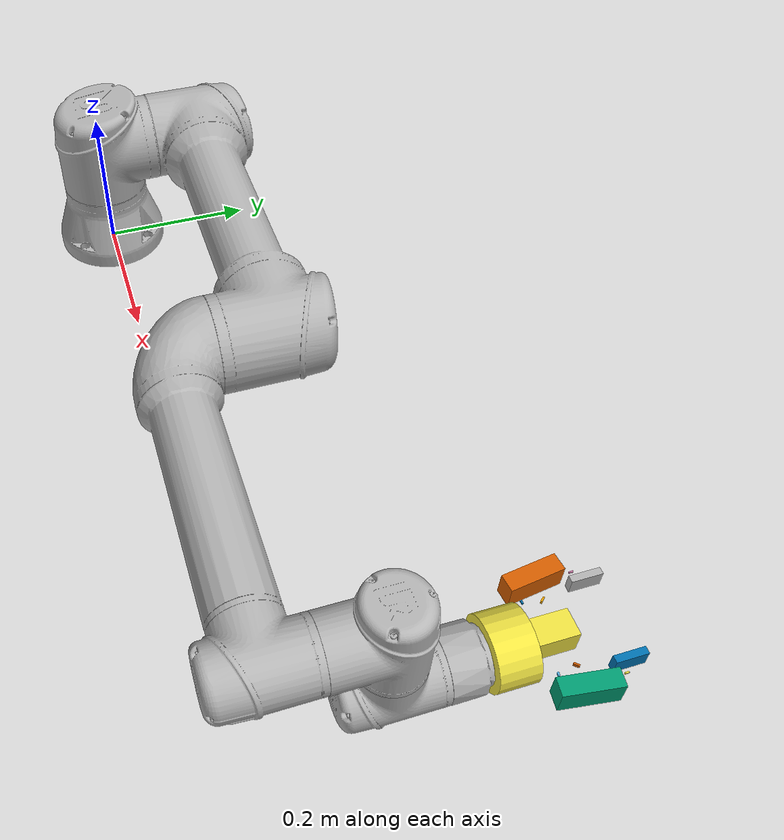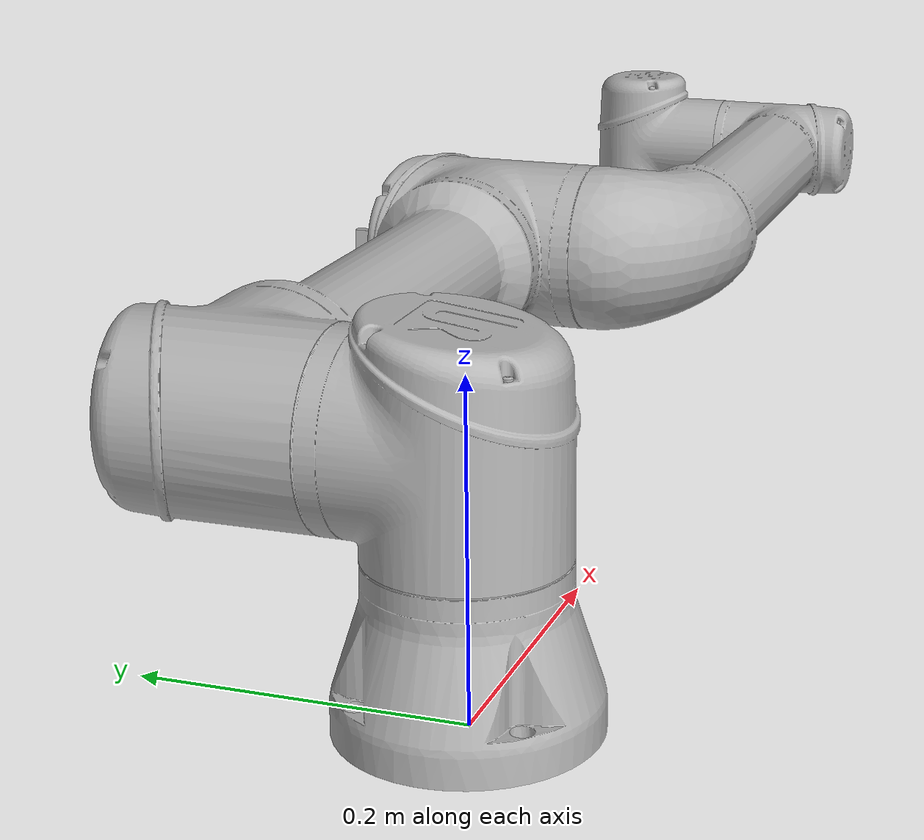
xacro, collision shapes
<?xml version="1.0"?>
<robot xmlns:xacro="http://ros.org/wiki/xacro"
       name="ur5e" >

  <!-- common stuff -->
  <xacro:include filename="$(find ur_e_description)/urdf/common.gazebo.xacro" />
nnn
  <!-- ur5e -->
  <xacro:include filename="$(find ur_e_description)/urdf/ur5e.urdf.xacro" />

  <!-- robotiq coupler -->
  <xacro:include filename="$(find robotiq_2f_model)/model/robotiq_ur_coupler.urdf.xacro" />

  <!-- robotiq_85_model -->
  <xacro:include filename="$(find robotiq_2f_model)/model/robotiq_2f_85.urdf.xacro" />
  <!-- arm -->
  <xacro:ur5e_robot prefix="" joint_limited="true"
    shoulder_pan_lower_limit="${-pi}" shoulder_pan_upper_limit="${pi}"
    shoulder_lift_lower_limit="${-pi}" shoulder_lift_upper_limit="${pi}"
    elbow_joint_lower_limit="${-pi}" elbow_joint_upper_limit="${pi}"
    wrist_1_lower_limit="${-pi}" wrist_1_upper_limit="${pi}"
    wrist_2_lower_limit="${-pi}" wrist_2_upper_limit="${pi}"
    wrist_3_lower_limit="${-pi}" wrist_3_upper_limit="${pi}"
    />

  <xacro:robotiq_ur_coupler parent="tool0" name="tool1" />
  <xacro:robotiq_2f_85 name="simple_gripper" parent="tool1" precise_collision="false" adaptive_transmission="false">
    <origin xyz="0 0 0" rpy="0 0 -${pi/2}" />
  </xacro:robotiq_2f_85>

  <link name="world" />

  <joint name="world_joint" type="fixed">
    <parent link="world" />
    <child link = "base_link" />
    <origin xyz="0.0 0.0 0.0" rpy="0.0 0.0 0.0" />
  </joint>

  <gazebo>
    <plugin name="gazebo_ros_control" filename="libgazebo_ros_control.so">
    </plugin>
    <plugin name="gazebo_mimic_joint" filename="libroboticsgroup_gazebo_mimic_joint_plugin.so">
    </plugin>
  </gazebo>

</robot>

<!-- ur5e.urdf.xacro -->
<robot xmlns:xacro="http://ros.org/wiki/xacro">

  <xacro:include filename="$(find ur_e_description)/urdf/ur.transmission.xacro" />
  <xacro:include filename="$(find ur_e_description)/urdf/ur.gazebo.xacro" />

  <xacro:macro name="cylinder_inertial" params="radius length mass *origin">
    <inertial>
      <mass value="${mass}" />
      <xacro:insert_block name="origin" />
      <inertia ixx="${0.0833333 * mass * (3 * radius * radius + length * length)}" ixy="0.0" ixz="0.0"
        iyy="${0.0833333 * mass * (3 * radius * radius + length * length)}" iyz="0.0"
        izz="${0.5 * mass * radius * radius}" />
    </inertial>
  </xacro:macro>

  <xacro:macro name="ur5e_robot" params="prefix joint_limited
    shoulder_pan_lower_limit:=${-pi}    shoulder_pan_upper_limit:=${pi}
    shoulder_lift_lower_limit:=${-pi}    shoulder_lift_upper_limit:=${pi}
    elbow_joint_lower_limit:=${-pi}    elbow_joint_upper_limit:=${pi}
    wrist_1_lower_limit:=${-pi}    wrist_1_upper_limit:=${pi}
    wrist_2_lower_limit:=${-pi}    wrist_2_upper_limit:=${pi}
    wrist_3_lower_limit:=${-pi}    wrist_3_upper_limit:=${pi}
    transmission_hw_interface:=hardware_interface/PositionJointInterface
    safety_limits:=false safety_pos_margin:=0.15
    safety_k_position:=20">

    <!-- Inertia parameters -->
    <xacro:property name="base_mass" value="4.0" />  <!-- This mass might be incorrect -->
    <xacro:property name="shoulder_mass" value="3.7000" />
    <xacro:property name="upper_arm_mass" value="8.3930" />
    <xacro:property name="forearm_mass" value="2.2750" />
    <xacro:property name="wrist_1_mass" value="1.2190" />
    <xacro:property name="wrist_2_mass" value="1.2190" />
    <xacro:property name="wrist_3_mass" value="0.1879" />

    <xacro:property name="shoulder_cog" value="0.0 0.00193 -0.02561" />
    <xacro:property name="upper_arm_cog" value="0.0 -0.024201 0.2125" />
    <xacro:property name="forearm_cog" value="0.0 0.0265 0.11993" />
    <xacro:property name="wrist_1_cog" value="0.0 0.110949 0.01634" />
    <xacro:property name="wrist_2_cog" value="0.0 0.0018 0.11099" />
    <xacro:property name="wrist_3_cog" value="0.0 0.001159 0.0" />

    <!-- Kinematic model -->
    <!-- Properties from urcontrol.conf -->
    <xacro:property name="d1" value="0.163" />
    <xacro:property name="a2" value="-0.425" />
    <xacro:property name="a3" value="-0.392" />
    <xacro:property name="d4" value="0.127" />
    <xacro:property name="d5" value="0.100" />
    <xacro:property name="d6" value="0.100" />

    <!-- Arbitrary offsets for shoulder/elbow joints -->
    <xacro:property name="shoulder_offset" value="0.138" />
    <xacro:property name="elbow_offset" value="-0.131" />

    <!-- link lengths used in model -->
    <xacro:property name="shoulder_height" value="${d1}" />
    <xacro:property name="upper_arm_length" value="${-a2}" />
    <xacro:property name="forearm_length" value="${-a3}" />
    <xacro:property name="wrist_1_length" value="${d4}" />
    <xacro:property name="wrist_2_length" value="${d5}" />
    <xacro:property name="wrist_3_length" value="${d6}" />
    <!--property name="shoulder_height" value="0.089159" /-->
    <!--property name="shoulder_offset" value="0.13585" /-->  <!-- shoulder_offset - elbow_offset + wrist_1_length = 0.10915 -->
    <!--property name="upper_arm_length" value="0.42500" /-->
    <!--property name="elbow_offset" value="0.1197" /-->       <!-- CAD measured -->
    <!--property name="forearm_length" value="0.39225" /-->
    <!--property name="wrist_1_length" value="0.093" /-->     <!-- CAD measured -->
    <!--property name="wrist_2_length" value="0.09465" /-->   <!-- In CAD this distance is 0.930, but in the spec it is 0.09465 -->
    <!--property name="wrist_3_length" value="0.0823" /-->

    <xacro:property name="shoulder_radius" value="0.060" />   <!-- manually measured -->
    <xacro:property name="upper_arm_radius" value="0.054" />  <!-- manually measured -->
    <xacro:property name="elbow_radius" value="0.060" />      <!-- manually measured -->
    <xacro:property name="forearm_radius" value="0.040" />    <!-- manually measured -->
    <xacro:property name="wrist_radius" value="0.045" />      <!-- manually measured -->

    <link name="${prefix}base_link" >
      <visual>
        <geometry>
          <mesh filename="package://ur_e_description/meshes/ur5e/visual/base.dae" />
        </geometry>
        <material name="LightGrey">
          <color rgba="0.7 0.7 0.7 1.0"/>
        </material>
      </visual>
      <collision>
        <geometry>
          <mesh filename="package://ur_e_description/meshes/ur5e/collision/base.stl" />
        </geometry>
      </collision>
      <xacro:cylinder_inertial radius="0.06" length="0.05" mass="${base_mass}">
        <origin xyz="0.0 0.0 0.0" rpy="0 0 0" />
      </xacro:cylinder_inertial>
    </link>

    <joint name="${prefix}shoulder_pan_joint" type="revolute">
      <parent link="${prefix}base_link" />
      <child link = "${prefix}shoulder_link" />
      <origin xyz="0.0 0.0 ${shoulder_height}" rpy="0.0 0.0 0.0" />
      <axis xyz="0 0 1" />
      <xacro:unless value="${joint_limited}">
        <limit lower="${-2.0 * pi}" upper="${2.0 * pi}" effort="150.0" velocity="3.14"/>
        <xacro:if value="${safety_limits}">
          <safety_controller soft_lower_limit="${-2.0 * pi + safety_pos_margin}" soft_upper_limit="${2.0 * pi - safety_pos_margin}" k_position="${safety_k_position}" k_velocity="0.0"/>
        </xacro:if>
      </xacro:unless>
      <xacro:if value="${joint_limited}">
        <limit lower="${shoulder_pan_lower_limit}" upper="${shoulder_pan_upper_limit}" effort="150.0" velocity="3.14"/>
        <xacro:if value="${safety_limits}">
          <safety_controller soft_lower_limit="${shoulder_pan_lower_limit + safety_pos_margin}" soft_upper_limit="${shoulder_pan_upper_limit - safety_pos_margin}" k_position="${safety_k_position}" k_velocity="0.0"/>
        </xacro:if>
      </xacro:if>
      <dynamics damping="0.0" friction="0.0"/>
    </joint>

    <link name="${prefix}shoulder_link">
      <visual>
        <geometry>
          <mesh filename="package://ur_e_description/meshes/ur5e/visual/shoulder.dae" />
        </geometry>
        <material name="LightGrey">
          <color rgba="0.7 0.7 0.7 1.0"/>
        </material>
      </visual>
      <collision>
        <geometry>
          <mesh filename="package://ur_e_description/meshes/ur5e/collision/shoulder.stl" />
        </geometry>
      </collision>
      <xacro:cylinder_inertial radius="0.06" length="0.15" mass="${shoulder_mass}">
        <origin xyz="0.0 0.0 0.0" rpy="0 0 0" />
      </xacro:cylinder_inertial>
    </link>

    <joint name="${prefix}shoulder_lift_joint" type="revolute">
      <parent link="${prefix}shoulder_link" />
      <child link = "${prefix}upper_arm_link" />
      <origin xyz="0.0 ${shoulder_offset} 0.0" rpy="0.0 ${pi / 2.0} 0.0" />
      <axis xyz="0 1 0" />
      <xacro:unless value="${joint_limited}">
        <limit lower="${-2.0 * pi}" upper="${2.0 * pi}" effort="150.0" velocity="3.14"/>
        <xacro:if value="${safety_limits}">
          <safety_controller soft_lower_limit="${-2.0 * pi + safety_pos_margin}" soft_upper_limit="${2.0 * pi - safety_pos_margin}" k_position="${safety_k_position}" k_velocity="0.0"/>
        </xacro:if>
      </xacro:unless>
      <xacro:if value="${joint_limited}">
        <limit lower="${shoulder_lift_lower_limit}" upper="${shoulder_lift_upper_limit}" effort="150.0" velocity="3.14"/>
        <xacro:if value="${safety_limits}">
          <safety_controller soft_lower_limit="${shoulder_lift_lower_limit + safety_pos_margin}" soft_upper_limit="${shoulder_lift_upper_limit - safety_pos_margin}" k_position="${safety_k_position}" k_velocity="0.0"/>
        </xacro:if>
      </xacro:if>
      <dynamics damping="0.0" friction="0.0"/>
    </joint>

    <link name="${prefix}upper_arm_link">
      <visual>
        <geometry>
          <mesh filename="package://ur_e_description/meshes/ur5e/visual/upperarm.dae" />
        </geometry>
        <material name="LightGrey">
          <color rgba="0.7 0.7 0.7 1.0"/>
        </material>
      </visual>
      <collision>
        <geometry>
          <mesh filename="package://ur_e_description/meshes/ur5e/collision/upperarm.stl" />
        </geometry>
      </collision>
      <xacro:cylinder_inertial radius="0.06" length="${upper_arm_length}" mass="${upper_arm_mass}">
        <origin xyz="0.0 0.0 ${upper_arm_length/2}" rpy="0 0 0" />
      </xacro:cylinder_inertial>
    </link>

    <joint name="${prefix}elbow_joint" type="revolute">
      <parent link="${prefix}upper_arm_link" />
      <child link = "${prefix}forearm_link" />
      <origin xyz="0.0 ${elbow_offset} ${upper_arm_length}" rpy="0.0 0.0 0.0" />
      <axis xyz="0 1 0" />
      <xacro:unless value="${joint_limited}">
        <limit lower="${-pi}" upper="${pi}" effort="150.0" velocity="3.14"/>
        <xacro:if value="${safety_limits}">
          <safety_controller soft_lower_limit="${-2.0 * pi + safety_pos_margin}" soft_upper_limit="${2.0 * pi - safety_pos_margin}" k_position="${safety_k_position}" k_velocity="0.0"/>
        </xacro:if>
      </xacro:unless>
      <xacro:if value="${joint_limited}">
        <limit lower="${elbow_joint_lower_limit}" upper="${elbow_joint_upper_limit}" effort="150.0" velocity="3.14"/>
        <xacro:if value="${safety_limits}">
          <safety_controller soft_lower_limit="${elbow_joint_lower_limit + safety_pos_margin}" soft_upper_limit="${elbow_joint_upper_limit - safety_pos_margin}" k_position="${safety_k_position}" k_velocity="0.0"/>
        </xacro:if>
      </xacro:if>
      <dynamics damping="0.0" friction="0.0"/>
    </joint>

    <link name="${prefix}forearm_link">
      <visual>
        <geometry>
          <mesh filename="package://ur_e_description/meshes/ur5e/visual/forearm.dae" />
        </geometry>
        <material name="LightGrey">
          <color rgba="0.7 0.7 0.7 1.0"/>
        </material>
      </visual>
      <collision>
        <geometry>
          <mesh filename="package://ur_e_description/meshes/ur5e/collision/forearm.stl" />
        </geometry>
      </collision>
      <xacro:cylinder_inertial radius="0.06" length="${forearm_length}" mass="${forearm_mass}">
        <origin xyz="0.0 0.0 ${forearm_length/2}" rpy="0 0 0" />
      </xacro:cylinder_inertial>
    </link>

    <joint name="${prefix}wrist_1_joint" type="revolute">
      <parent link="${prefix}forearm_link" />
      <child link = "${prefix}wrist_1_link" />
      <origin xyz="0.0 0.0 ${forearm_length}" rpy="0.0 ${pi / 2.0} 0.0" />
      <axis xyz="0 1 0" />
      <xacro:unless value="${joint_limited}">
        <limit lower="${-2.0 * pi}" upper="${2.0 * pi}" effort="28.0" velocity="6.28"/>
        <xacro:if value="${safety_limits}">
          <safety_controller soft_lower_limit="${-2.0 * pi + safety_pos_margin}" soft_upper_limit="${2.0 * pi - safety_pos_margin}" k_position="${safety_k_position}" k_velocity="0.0"/>
        </xacro:if>
      </xacro:unless>
      <xacro:if value="${joint_limited}">
        <limit lower="${wrist_1_lower_limit}" upper="${wrist_1_upper_limit}" effort="28.0" velocity="6.28"/>
        <xacro:if value="${safety_limits}">
          <safety_controller soft_lower_limit="${wrist_1_lower_limit + safety_pos_margin}" soft_upper_limit="${wrist_1_upper_limit - safety_pos_margin}" k_position="${safety_k_position}" k_velocity="0.0"/>
        </xacro:if>
      </xacro:if>
      <dynamics damping="0.0" friction="0.0"/>
    </joint>

    <link name="${prefix}wrist_1_link">
      <visual>
        <geometry>
          <mesh filename="package://ur_e_description/meshes/ur5e/visual/wrist1.dae" />
        </geometry>
        <material name="LightGrey">
          <color rgba="0.7 0.7 0.7 1.0"/>
        </material>
      </visual>
      <collision>
        <geometry>
          <mesh filename="package://ur_e_description/meshes/ur5e/collision/wrist1.stl" />
        </geometry>
      </collision>
      <xacro:cylinder_inertial radius="0.06" length="0.12" mass="${wrist_1_mass}">
        <origin xyz="0.0 ${wrist_1_length} 0.0" rpy="0 0 0" />
      </xacro:cylinder_inertial>
    </link>

    <joint name="${prefix}wrist_2_joint" type="revolute">
      <parent link="${prefix}wrist_1_link" />
      <child link = "${prefix}wrist_2_link" />
      <origin xyz="0.0 ${wrist_1_length} 0.0" rpy="0.0 0.0 0.0" />
      <axis xyz="0 0 1" />
      <xacro:unless value="${joint_limited}">
        <limit lower="${-2.0 * pi}" upper="${2.0 * pi}" effort="28.0" velocity="6.28"/>
        <xacro:if value="${safety_limits}">
          <safety_controller soft_lower_limit="${-2.0 * pi + safety_pos_margin}" soft_upper_limit="${2.0 * pi - safety_pos_margin}" k_position="${safety_k_position}" k_velocity="0.0"/>
        </xacro:if>
      </xacro:unless>
      <xacro:if value="${joint_limited}">
        <limit lower="${wrist_2_lower_limit}" upper="${wrist_2_upper_limit}" effort="28.0" velocity="6.28"/>
        <xacro:if value="${safety_limits}">
          <safety_controller soft_lower_limit="${wrist_2_lower_limit + safety_pos_margin}" soft_upper_limit="${wrist_2_upper_limit - safety_pos_margin}" k_position="${safety_k_position}" k_velocity="0.0"/>
        </xacro:if>
      </xacro:if>
      <dynamics damping="0.0" friction="0.0"/>
    </joint>

    <link name="${prefix}wrist_2_link">
      <visual>
        <geometry>
          <mesh filename="package://ur_e_description/meshes/ur5e/visual/wrist2.dae" />
        </geometry>
        <material name="LightGrey">
          <color rgba="0.7 0.7 0.7 1.0"/>
        </material>
      </visual>
      <collision>
        <geometry>
          <mesh filename="package://ur_e_description/meshes/ur5e/collision/wrist2.stl" />
        </geometry>
      </collision>
      <xacro:cylinder_inertial radius="0.06" length="0.12" mass="${wrist_2_mass}">
        <origin xyz="0.0 0.0 ${wrist_2_length}" rpy="0 0 0" />
      </xacro:cylinder_inertial>
    </link>

    <joint name="${prefix}wrist_3_joint" type="revolute">
      <parent link="${prefix}wrist_2_link" />
      <child link = "${prefix}wrist_3_link" />
      <origin xyz="0.0 0.0 ${wrist_2_length}" rpy="0.0 0.0 0.0" />
      <axis xyz="0 1 0" />
      <xacro:unless value="${joint_limited}">
        <limit lower="${-2.0 * pi}" upper="${2.0 * pi}" effort="28.0" velocity="6.28"/>
        <xacro:if value="${safety_limits}">
          <safety_controller soft_lower_limit="${-2.0 * pi + safety_pos_margin}" soft_upper_limit="${2.0 * pi - safety_pos_margin}" k_position="${safety_k_position}" k_velocity="0.0"/>
        </xacro:if>
      </xacro:unless>
      <xacro:if value="${joint_limited}">
        <limit lower="${wrist_3_lower_limit}" upper="${wrist_3_upper_limit}" effort="28.0" velocity="6.28"/>
        <xacro:if value="${safety_limits}">
          <safety_controller soft_lower_limit="${wrist_3_lower_limit + safety_pos_margin}" soft_upper_limit="${wrist_3_upper_limit - safety_pos_margin}" k_position="${safety_k_position}" k_velocity="0.0"/>
        </xacro:if>
      </xacro:if>
      <dynamics damping="0.0" friction="0.0"/>
    </joint>

    <link name="${prefix}wrist_3_link">
      <visual>
        <geometry>
          <mesh filename="package://ur_e_description/meshes/ur5e/visual/wrist3.dae" />
        </geometry>
        <material name="LightGrey">
          <color rgba="0.7 0.7 0.7 1.0"/>
        </material>
      </visual>
      <collision>
        <geometry>
          <mesh filename="package://ur_e_description/meshes/ur5e/collision/wrist3.stl" />
        </geometry>
      </collision>
      <xacro:cylinder_inertial radius="0.0375" length="0.0458" mass="${wrist_3_mass}">
        <origin xyz="0.0 ${wrist_3_length - 0.0458/2} 0.0" rpy="${pi/2} 0 0" />
      </xacro:cylinder_inertial>
    </link>

    <joint name="${prefix}ee_fixed_joint" type="fixed">
      <parent link="${prefix}wrist_3_link" />
      <child link = "${prefix}ee_link" />
      <origin xyz="0.0 ${wrist_3_length} 0.0" rpy="0.0 0.0 ${pi/2.0}" />
    </joint>

    <link name="${prefix}ee_link">
      <collision>
        <geometry>
          <box size="0.01 0.01 0.01"/>
        </geometry>
        <origin rpy="0 0 0" xyz="-0.01 0 0"/>
      </collision>
    </link>

    <xacro:ur_arm_transmission prefix="${prefix}" />
    <xacro:ur_arm_gazebo prefix="${prefix}" />

    <!-- ROS base_link to UR 'Base' Coordinates transform -->
    <link name="${prefix}base"/>
    <joint name="${prefix}base_link-base_fixed_joint" type="fixed">
      <!-- NOTE: this rotation is only needed as long as base_link itself is
                 not corrected wrt the real robot (ie: rotated over 180
                 degrees)
      -->
      <origin xyz="0 0 0" rpy="0 0 ${-pi}"/>
      <parent link="${prefix}base_link"/>
      <child link="${prefix}base"/>
    </joint>

    <!-- Frame coincident with all-zeros TCP on UR controller -->
    <link name="${prefix}tool0"/>
    <joint name="${prefix}wrist_3_link-tool0_fixed_joint" type="fixed">
      <origin xyz="0 ${wrist_3_length} 0" rpy="${pi/-2.0} 0 0"/>
      <parent link="${prefix}wrist_3_link"/>
      <child link="${prefix}tool0"/>
    </joint>

  </xacro:macro>
</robot>

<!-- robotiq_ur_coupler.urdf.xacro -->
<robot xmlns:xacro="http://ros.org/wiki/xacro">

<xacro:macro name="robotiq_ur_coupler" params="parent name">

	<xacro:include filename="$(find robotiq_2f_model)/model/inertias.urdf.xacro" />

	<joint name="${name}_coupler_joint" type="fixed">
		<!-- total height of coupler, minus the depth of robot end-effector shape and the gripper small depth-->
		<origin xyz="0 0 ${0.001*(13.5-3-3)}" rpy="0 0 0" />
		<parent link="${parent}"/>
		<child link="${name}"/>
	</joint>
	<link name="${name}">
		<visual>
			<origin xyz="0 0 ${-1*0.001*(13.93-3)*0.5}" rpy="0 0 0" />
			<geometry>
				<!-- only the visible part of the coupler -->
				<cylinder length="${0.001*(13.9)}" radius="${0.5*0.075}" />
			</geometry>
			<material name="dark_grey">
				<color rgba="0.05 0.05 0.05 1" />
			</material>
		</visual>
		<collision>
			<origin xyz="0 0 0" rpy="0 0 0" />
			<geometry>
				<cylinder length="${0.001*(13.5)}" radius="${0.5*0.075}" />
			</geometry>
		</collision>
		<inertial>
			<mass value="0.3"/>
			<origin xyz="0 0 ${0.001*(13.9)*0.5}"  />
			<cyl_iner radius="${0.5*0.075}" length="${0.001*(13.9)}" mass="0.3"/>
		</inertial>
	</link>
</xacro:macro>

</robot>

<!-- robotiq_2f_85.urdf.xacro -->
<robot xmlns:xacro="http://ros.org/wiki/xacro">

	<xacro:include filename="$(find robotiq_2f_model)/model/inertias.urdf.xacro" />

	<xacro:macro name="robotiq_2f_85" params="parent name precise_collision:=false adaptive_transmission:=false with_pads:=true *origin">

		<!-- base -->
		<joint name="${parent}_${name}_base_joint" type="fixed">
			<xacro:insert_block name="origin"/>
			<parent link="${parent}"/>
			<child link="${name}_base"/>
		</joint>
		<link name="${name}_base">
			<inertial>
				<mass value="0.5"/>
				<origin xyz="0 0 ${0.015*0.5}"  />
				<cylinder_inertia radius="0.04" length="0.045" mass="0.5"/>
			</inertial>
			<visual>
				<origin xyz="0 0 0" rpy="0 0 0"/>
				<geometry>
					<mesh filename="package://robotiq_2f_model/model/meshes/2f85/collision/base.stl" scale="0.001 0.001 0.001"/>
				</geometry>
			</visual>
			<xacro:unless value="${precise_collision}">
			<collision>
				<origin xyz="0 0 0.015" rpy="0 0 0"/>
				<geometry>
					<cylinder radius="0.04" length="0.045"/>
				</geometry>
			</collision>
			<collision>
				<origin xyz="0 0 0.06" rpy="0 0 0"/>
				<geometry>
					<box size="0.03 0.03 0.06"/>
				</geometry>
			</collision>
			</xacro:unless>
			<xacro:if value="${precise_collision}">
			<collision>
				<geometry>
					<mesh filename="package://robotiq_2f_model/model/meshes/2f85/collision/base.stl" scale="0.001 0.001 0.001"/>
				</geometry>
			</collision>
			</xacro:if>
		</link>

		<!-- right finger -->

		<joint name="${name}_right_driver_joint" type="revolute">
			<origin xyz="0 0.0306011 0.054904" rpy="0 0 0"/>
			<parent link="${name}_base"/>
			<child link="${name}_right_driver"/>
			<axis xyz="1 0 0"/>
			<limit lower="${0 * 3.141592 / 180}" upper="${50 * 3.141592 / 180}" effort="60" velocity="${110 * 3.141592 / 180}" />
		</joint>
		<link name="${name}_right_driver">
			<inertial>
				<mass value="0.1"/>
				<origin xyz="0 0.02 0" rpy="0 0 0" />
				<box_inertia x_dim="0.02" y_dim="0.04" z_dim="0.02" mass="0.1"/>
			</inertial>
			<visual>
				<geometry>
					<mesh filename="package://robotiq_2f_model/model/meshes/2f85/visual/driver.dae" scale="0.001 0.001 0.001"/>
				</geometry>
			</visual>
			<xacro:unless value="${precise_collision}">
			<collision>
				<origin xyz="0 0.01 0" rpy="-0.1 0 0"/>
				<geometry>
					<box size="0.002 0.004 0.002"/>
				</geometry>
			</collision>
			</xacro:unless>
			<xacro:if value="${precise_collision}">
			<collision>
				<geometry>
					<mesh filename="package://robotiq_2f_model/model/meshes/2f85/collision/driver.stl" scale="0.001 0.001 0.001"/>
				</geometry>
			</collision>
			</xacro:if>
		</link>

		<xacro:unless value="${adaptive_transmission}">
		<joint name="${name}_right_coupler_joint" type="fixed">
			<origin xyz="0 0.0315 -0.0041" rpy="0 0 0"/>
			<parent link="${name}_right_driver"/>
			<child link="${name}_right_coupler"/>
		</joint>
		</xacro:unless>
		<xacro:if value="${adaptive_transmission}">
			<joint name="${name}_right_coupler_joint" type="revolute">
			<origin xyz="0 0.0315 -0.0041" rpy="0 0 0"/>
			<parent link="${name}_right_driver"/>
			<child link="${name}_right_coupler"/>
			<axis xyz="1 0 0"/>
			<limit lower="${-170 * 3.141592 / 180}" upper="${170 * 3.141592 / 180}" effort="176" velocity="${110 * 3.141592 / 180}" />
		</joint>
		</xacro:if>
		<link name="${name}_right_coupler">
			<inertial>
				<mass value="0.1"/>
				<origin xyz="0 0.0 0.025" rpy="-1.7 0 0"/>
				<box_inertia x_dim="0.03" y_dim="0.065" z_dim="0.02" mass="0.1"/>
			</inertial>
			<visual>
				<geometry>
					<mesh filename="package://robotiq_2f_model/model/meshes/2f85/visual/coupler.dae" scale="0.001 0.001 0.001"/>
				</geometry>
			</visual>
			<xacro:unless value="${precise_collision}">
			<collision>
				<origin xyz="0 0.0 0.025" rpy="-1.7 0 0"/>
				<geometry>
					<box size="0.03 0.065 0.02"/>
				</geometry>
			</collision>
			</xacro:unless>
			<xacro:if value="${precise_collision}">
				<collision>
					<geometry>
						<mesh filename="package://robotiq_2f_model/model/meshes/2f85/collision/coupler.stl" scale="0.001 0.001 0.001"/>
					</geometry>
				</collision>
			</xacro:if>
		</link>

		<joint name="${name}_right_follower_joint" type="revolute">
			<origin xyz="0 0.0061 0.0471" rpy="0 0 0"/>
			<parent link="${name}_right_coupler"/>
			<child link="${name}_right_follower"/>
			<axis xyz="1 0 0"/>
			<limit lower="${-170 * 3.141592 / 180}" upper="${170 * 3.141592 / 180}" effort="176" velocity="${110 * 3.141592 / 180}" />

			<xacro:unless value="${adaptive_transmission}">
			<mimic joint="${name}_right_driver_joint" multiplier="-1"/>
			</xacro:unless>
		</joint>
		<link name="${name}_right_follower">
			<inertial>
				<mass value="0.1"/>
				<origin xyz="0 -0.018 0.022" />
				<box_inertia x_dim="0.02" y_dim="0.015" z_dim="0.048" mass="0.1"/>
			</inertial>
			<visual>
				<geometry>
					<mesh filename="package://robotiq_2f_model/model/meshes/2f85/visual/follower.dae" scale="0.001 0.001 0.001"/>
				</geometry>
			</visual>
			<xacro:unless value="${precise_collision}">
			<collision>
				<origin xyz="0 -0.01 0.022" rpy="0 0 0"/>
				<geometry>
					<box size="0.002 0.0015 0.0048"/>
				</geometry>
			</collision>
			</xacro:unless>
			<xacro:if value="${precise_collision}">
			<collision>
				<geometry>
					<mesh filename="package://robotiq_2f_model/model/meshes/2f85/collision/follower.stl" scale="0.001 0.001 0.001"/>
				</geometry>
			</collision>
			</xacro:if>
		</link>

		<xacro:if value="${with_pads}">
			<joint name="${name}_right_pad_joint" type="fixed">
				<parent link="${name}_right_follower"/>
				<child link="${name}_right_pad"/>
			</joint>
			<link name="${name}_right_pad">
				<inertial>
					<mass value="0.1"/>
					<origin xyz="0 -0.022 0.031" />
					<box_inertia x_dim="0.02" y_dim="0.008" z_dim="0.036" mass="0.1"/>
				</inertial>
				<visual>
					<geometry>
						<mesh filename="package://robotiq_2f_model/model/meshes/2f85/visual/pad.dae" scale="0.001 0.001 0.001"/>
					</geometry>
				</visual>
				<xacro:unless value="${precise_collision}">
				<collision>
					<origin xyz="0 -0.022 0.031" rpy="0 0 0"/>
					<geometry>
						<box size="0.02 0.008 0.036"/>
					</geometry>
				</collision>
				</xacro:unless>
				<xacro:if value="${precise_collision}">
				<collision>
					<geometry>
						<mesh filename="package://robotiq_2f_model/model/meshes/2f85/collision/pad.stl" scale="0.001 0.001 0.001"/>
					</geometry>
				</collision>
				</xacro:if>
			</link>
		</xacro:if>

		<joint name="${name}_right_spring_link_joint" type="revolute">
			<origin xyz="0 0.012 0.0614" rpy="0 0 0"/>
			<parent link="${name}_base"/>
			<child link="${name}_right_spring_link"/>
			<axis xyz="1 0 0"/>
			<limit lower="${-170 * 3.141592 / 180}" upper="${170 * 3.141592 / 180}" effort="176" velocity="${110 * 3.141592 / 180}" />

			<xacro:unless value="${adaptive_transmission}">
			<mimic joint="${name}_right_driver_joint" multiplier="1"/>
			</xacro:unless>
		</joint>
		<link name="${name}_right_spring_link">
			<inertial>
				<mass value="0.1"/>
				<origin xyz="0 0.018 0.018" rpy="-0.7068 0 0"/>
				<box_inertia x_dim="0.04" y_dim="0.02" z_dim="0.065" mass="0.1"/>
			</inertial>
			<visual>
				<geometry>
					<mesh filename="package://robotiq_2f_model/model/meshes/2f85/visual/spring_link.dae" scale="0.001 0.001 0.001"/>
				</geometry>
			</visual>
			<xacro:unless value="${precise_collision}">
			<collision>
				<origin xyz="0 0.025 0.015" rpy="-0.7068 0 0"/>
				<geometry>
					<box size="0.004 0.002 0.0065"/>
				</geometry>
			</collision>
			</xacro:unless>
			<xacro:if value="${precise_collision}">
			<collision>
				<geometry>
					<mesh filename="package://robotiq_2f_model/model/meshes/2f85/collision/spring_link.stl" scale="0.001 0.001 0.001"/>
				</geometry>
			</collision>
			</xacro:if>
		</link>

		<!-- left finger -->

		<joint name="${name}_left_driver_joint" type="revolute">
			<origin xyz="0 -0.0306011 0.054904" rpy="0 0 3.141592653589793"/>
			<parent link="${name}_base"/>
			<child link="${name}_left_driver"/>
			<axis xyz="1 0 0"/>
			<limit lower="${0 * 3.141592 / 180}" upper="${50 * 3.141592 / 180}" effort="176" velocity="${110 * 3.141592 / 180}" />

			<xacro:unless value="${adaptive_transmission}">
			<mimic joint="${name}_right_driver_joint" multiplier="1"/>
			</xacro:unless>
		</joint>
		<link name="${name}_left_driver">
			<inertial>
				<mass value="0.1"/>
				<origin xyz="0 0.02 0" rpy="0 0 0" />
				<box_inertia x_dim="0.02" y_dim="0.04" z_dim="0.02" mass="0.1"/>
			</inertial>
			<visual>
				<geometry>
					<mesh filename="package://robotiq_2f_model/model/meshes/2f85/visual/driver.dae" scale="0.001 0.001 0.001"/>
				</geometry>
			</visual>
			<xacro:unless value="${precise_collision}">
			<collision>
				<origin xyz="0 0.01 0" rpy="-0.1 0 0"/>
				<geometry>
					<box size="0.002 0.004 0.002"/>
				</geometry>
			</collision>
			</xacro:unless>
			<xacro:if value="${precise_collision}">
			<collision>
				<geometry>
					<mesh filename="package://robotiq_2f_model/model/meshes/2f85/collision/driver.stl" scale="0.001 0.001 0.001"/>
				</geometry>
			</collision>
			</xacro:if>
		</link>

		<xacro:unless value="${adaptive_transmission}">
		<joint name="${name}_left_coupler_joint" type="fixed">
			<origin xyz="0 0.0315 -0.0041" rpy="0 0 0"/>
			<parent link="${name}_left_driver"/>
			<child link="${name}_left_coupler"/>
		</joint>
		</xacro:unless>
		<xacro:if value="${adaptive_transmission}">
			<joint name="${name}_left_coupler_joint" type="revolute">
			<origin xyz="0 0.0315 -0.0041" rpy="0 0 0"/>
			<parent link="${name}_left_driver"/>
			<child link="${name}_left_coupler"/>
			<axis xyz="1 0 0"/>
			<limit lower="${-170 * 3.141592 / 180}" upper="${170 * 3.141592 / 180}" effort="176" velocity="${110 * 3.141592 / 180}" />
		</joint>
		</xacro:if>
		<link name="${name}_left_coupler">
			<inertial>
				<mass value="0.1"/>
				<origin xyz="0 0.0 0.025" rpy="-1.7 0 0"/>
				<box_inertia x_dim="0.03" y_dim="0.065" z_dim="0.02" mass="0.1"/>
			</inertial>
			<visual>
				<geometry>
					<mesh filename="package://robotiq_2f_model/model/meshes/2f85/visual/coupler.dae" scale="0.001 0.001 0.001"/>
				</geometry>
			</visual>
			<xacro:unless value="${precise_collision}">
			<collision>
				<origin xyz="0 0.0 0.025" rpy="-1.7 0 0"/>
				<geometry>
					<box size="0.03 0.065 0.02"/>
				</geometry>
			</collision>
			</xacro:unless>
			<xacro:if value="${precise_collision}">
				<collision>
					<geometry>
						<mesh filename="package://robotiq_2f_model/model/meshes/2f85/collision/coupler.stl" scale="0.001 0.001 0.001"/>
					</geometry>
				</collision>
			</xacro:if>
		</link>

		<joint name="${name}_left_follower_joint" type="revolute">
			<origin xyz="0 0.0061 0.0471" rpy="0 0 0"/>
			<parent link="${name}_left_coupler"/>
			<child link="${name}_left_follower"/>
			<axis xyz="1 0 0"/>
			<limit lower="${-170 * 3.141592 / 180}" upper="${170 * 3.141592 / 180}" effort="176" velocity="${110 * 3.141592 / 180}" />

			<xacro:unless value="${adaptive_transmission}">
			<mimic joint="${name}_right_driver_joint" multiplier="-1"/>
			</xacro:unless>
		</joint>
		<link name="${name}_left_follower">
			<inertial>
				<mass value="0.1"/>
				<origin xyz="0 -0.018 0.022" />
				<box_inertia x_dim="0.02" y_dim="0.015" z_dim="0.048" mass="0.1"/>
			</inertial>
			<visual>
				<geometry>
					<mesh filename="package://robotiq_2f_model/model/meshes/2f85/visual/follower.dae" scale="0.001 0.001 0.001"/>
				</geometry>
			</visual>
			<xacro:unless value="${precise_collision}">
			<collision>
				<origin xyz="0 -0.01 0.022" rpy="0 0 0"/>
				<geometry>
					<box size="0.002 0.0015 0.0048"/>
				</geometry>
			</collision>
			</xacro:unless>
			<xacro:if value="${precise_collision}">
			<collision>
				<geometry>
					<mesh filename="package://robotiq_2f_model/model/meshes/2f85/collision/follower.stl" scale="0.001 0.001 0.001"/>
				</geometry>
			</collision>
			</xacro:if>
		</link>

		<xacro:if value="${with_pads}">
			<joint name="${name}_left_pad_joint" type="fixed">
				<parent link="${name}_left_follower"/>
				<child link="${name}_left_pad"/>
			</joint>
			<link name="${name}_left_pad">
				<inertial>
					<mass value="0.1"/>
					<origin xyz="0 -0.022 0.031" />
					<box_inertia x_dim="0.02" y_dim="0.008" z_dim="0.036" mass="0.1"/>
				</inertial>
				<visual>
					<geometry>
						<mesh filename="package://robotiq_2f_model/model/meshes/2f85/visual/pad.dae" scale="0.001 0.001 0.001"/>
					</geometry>
				</visual>
				<xacro:unless value="${precise_collision}">
				<collision>
					<origin xyz="0 -0.022 0.031" rpy="0 0 0"/>
					<geometry>
						<box size="0.02 0.008 0.036"/>
					</geometry>
				</collision>
				</xacro:unless>
				<xacro:if value="${precise_collision}">
				<collision>
					<geometry>
						<mesh filename="package://robotiq_2f_model/model/meshes/2f85/collision/pad.stl" scale="0.001 0.001 0.001"/>
					</geometry>
				</collision>
				</xacro:if>
			</link>
		</xacro:if>

		<joint name="${name}_left_spring_link_joint" type="revolute">
			<origin xyz="0 -0.012 0.0614" rpy="0 0 3.141592653589793"/>
			<parent link="${name}_base"/>
			<child link="${name}_left_spring_link"/>
			<axis xyz="1 0 0"/>
			<limit lower="${-170 * 3.141592 / 180}" upper="${170 * 3.141592 / 180}" effort="176" velocity="${110 * 3.141592 / 180}" />

			<xacro:unless value="${adaptive_transmission}">
			<mimic joint="${name}_right_driver_joint" multiplier="1"/>
			</xacro:unless>
		</joint>
		<link name="${name}_left_spring_link">
			<inertial>
				<mass value="0.1"/>
				<origin xyz="0 0.018 0.018" rpy="-0.7068 0 0"/>
				<box_inertia x_dim="0.04" y_dim="0.02" z_dim="0.065" mass="0.1"/>
			</inertial>
			<visual>
				<geometry>
					<mesh filename="package://robotiq_2f_model/model/meshes/2f85/visual/spring_link.dae" scale="0.001 0.001 0.001"/>
				</geometry>
			</visual>
			<xacro:unless value="${precise_collision}">
			<collision>
				<origin xyz="0 0.025 0.015" rpy="-0.7068 0 0"/>
				<geometry>
					<box size="0.004 0.002 0.0065"/>
				</geometry>
			</collision>
			</xacro:unless>
			<xacro:if value="${precise_collision}">
			<collision>
				<geometry>
					<mesh filename="package://robotiq_2f_model/model/meshes/2f85/collision/spring_link.stl" scale="0.001 0.001 0.001"/>
				</geometry>
			</collision>
			</xacro:if>
		</link>

		<xacro:unless value="${adaptive_transmission}">
			<transmission name="${name}_right_driver_trans">
				<type>transmission_interface/SimpleTransmission</type>
				<joint name="${name}_right_driver_joint">
					<hardwareInterface>hardware_interface/PositionJointInterface</hardwareInterface>
				</joint>
				<actuator name="${name}_right_driver_motor">
					<mechanicalReduction>1</mechanicalReduction>
				</actuator>
			</transmission>

			<gazebo>
				<plugin name="${name}_right_follower_joint_plugin" filename="libroboticsgroup_gazebo_mimic_joint_plugin.so">
					<joint>${name}_right_driver_joint</joint>
					<mimicJoint>${name}_right_follower_joint</mimicJoint>
					<multiplier>-1</multiplier>
				</plugin>
				<plugin name="${name}_right_spring_link_joint_plugin" filename="libroboticsgroup_gazebo_mimic_joint_plugin.so">
					<joint>${name}_right_driver_joint</joint>
					<mimicJoint>${name}_right_spring_link_joint</mimicJoint>
					<multiplier>1</multiplier>
				</plugin>
				<plugin name="${name}_left_follower_joint_plugin" filename="libroboticsgroup_gazebo_mimic_joint_plugin.so">
					<joint>${name}_right_driver_joint</joint>
					<mimicJoint>${name}_left_follower_joint</mimicJoint>
					<multiplier>-1</multiplier>
				</plugin>
				<plugin name="${name}_left_spring_link_joint_plugin" filename="libroboticsgroup_gazebo_mimic_joint_plugin.so">
					<joint>${name}_right_driver_joint</joint>
					<mimicJoint>${name}_left_spring_link_joint</mimicJoint>
					<multiplier>1</multiplier>
				</plugin>
				<plugin name="${name}_left_driver_joint_plugin" filename="libroboticsgroup_gazebo_mimic_joint_plugin.so">
					<joint>${name}_right_driver_joint</joint>
					<mimicJoint>${name}_left_driver_joint</mimicJoint>
					<multiplier>1</multiplier>
				</plugin>
			</gazebo>
		</xacro:unless>
	</xacro:macro>
</robot>

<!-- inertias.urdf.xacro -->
<robot xmlns:xacro="http://ros.org/wiki/xacro">

<!-- length is along the z-axis! -->
<xacro:macro name="cyl_iner" params="radius length mass">
	<inertia ixx="${1000 * mass * (3 * radius * radius + length * length) / 12}" iyy="${1000 * mass * (3 * radius * radius + length * length) / 12}" izz="${1000 * mass * radius* radius / 2}" ixy="0" iyz="0" ixz="0"/>
</xacro:macro>

<xacro:macro name="box_inertia" params="x_dim y_dim z_dim mass">
	<inertia ixx="${1000 * mass * (y_dim * y_dim + z_dim * z_dim) / 12}" iyy="${1000 * mass * (x_dim * x_dim + z_dim * z_dim) / 12}" izz="${1000 * mass * (x_dim * x_dim + y_dim * y_dim) / 12}" ixy="0" iyz="0" ixz="0"/>
</xacro:macro>

</robot>
